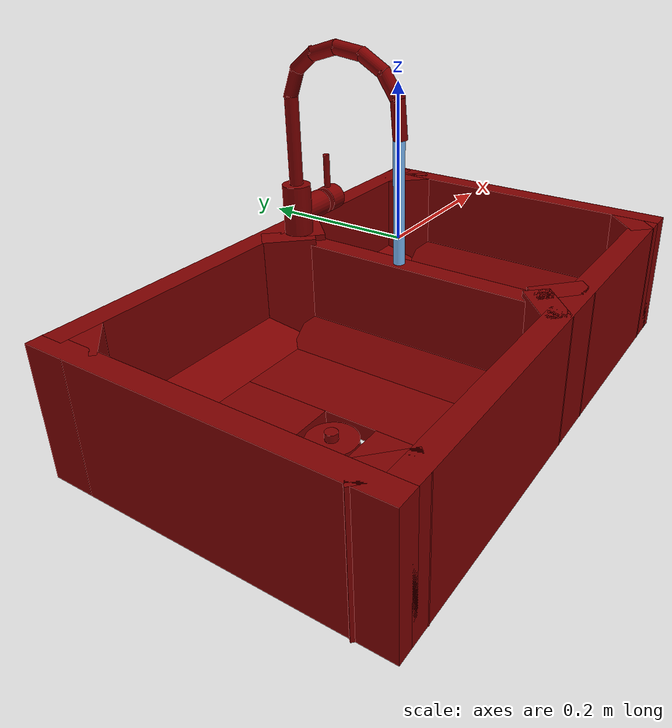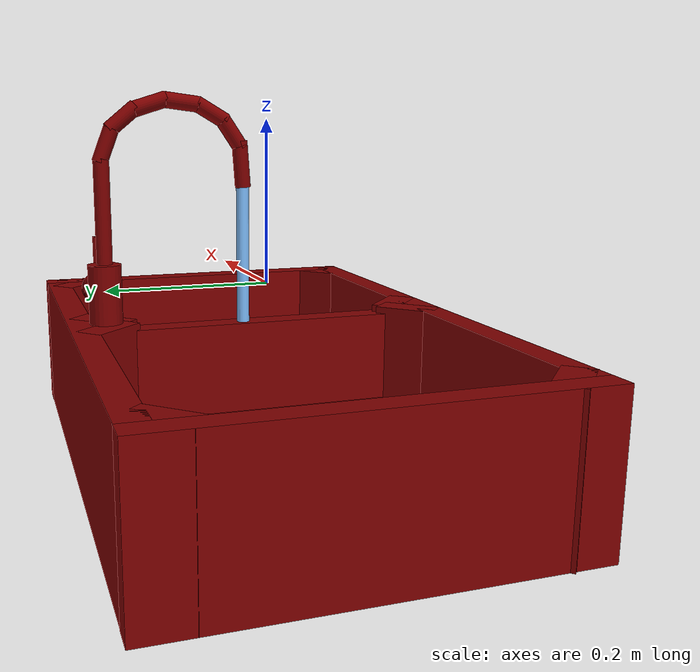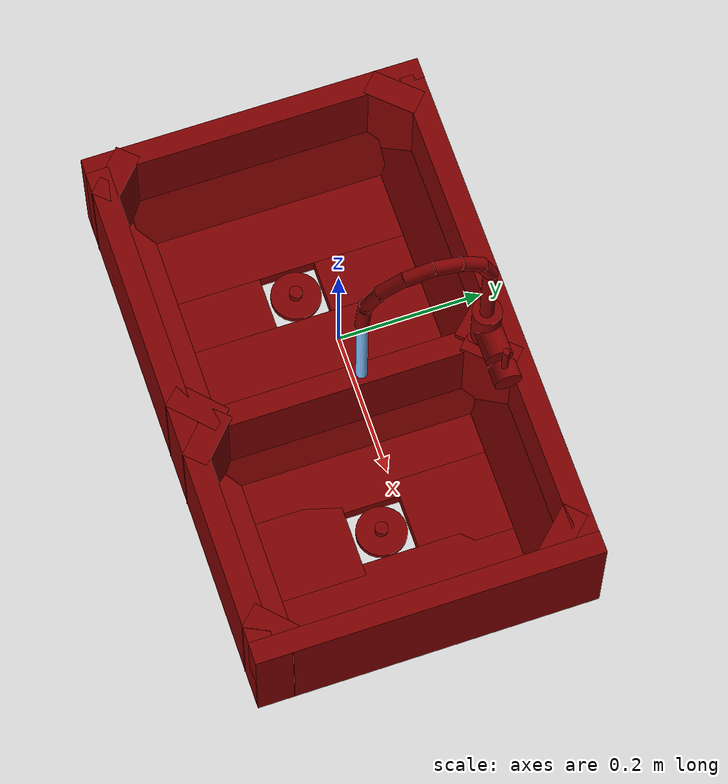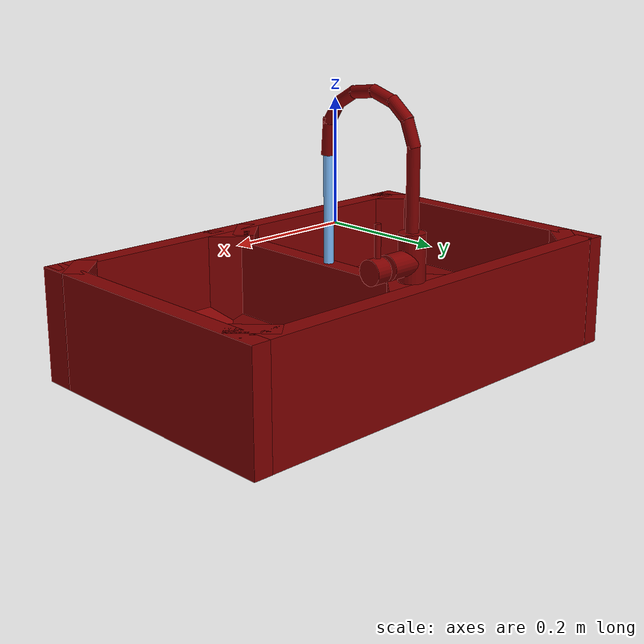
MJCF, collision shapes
<mujoco model="model">
  <compiler angle="radian"/>
  <asset>
    <mesh file="visuals/handle.obj" name="handle_vis"/>
    <mesh file="visuals/Body001.obj" name="Body001_vis"/>
    <mesh file="visuals/Funnel001.obj" name="Funnel001_vis"/>
    <mesh file="visuals/Funnel002.obj" name="Funnel002_vis"/>
    <mesh file="visuals/spout.obj" name="spout_vis"/>
    <texture file="visuals/T_BC001.png" name="Body001_material" type="2d"/>
    <material name="Body001_material" rgba="1 1 1 1.0" texture="Body001_material" shininess="0.141421377658844" specular="1"/>
    <texture file="visuals/T_BC001.png" name="handle_material" type="2d"/>
    <material name="handle_material" rgba="1 1 1 1.0" texture="handle_material" shininess="0.141421377658844" specular="2"/>
    <texture file="visuals/T_BC001.png" name="Funnel001_material" type="2d"/>
    <material name="Funnel001_material" rgba="1 1 1 1.0" texture="Funnel001_material" shininess="0.141421377658844" specular="2"/>
    <texture file="visuals/T_BC001.png" name="Funnel002_material" type="2d"/>
    <material name="Funnel002_material" rgba="1 1 1 1.0" texture="Funnel002_material" shininess="0.141421377658844" specular="2"/>
    <texture file="visuals/T_BC001.png" name="spout_material" type="2d"/>
    <material name="spout_material" rgba="1 1 1 1.0" texture="spout_material" shininess="0.141421377658844" specular="2"/>
  </asset>
  <default>
    <default class="visual">
      <geom conaffinity="0" contype="0" group="1" type="mesh"/>
    </default>
    <default class="collision">
      <geom group="0" rgba="0.5 0 0 0.5"/>
    </default>
    <default class="spawn">
      <geom group="0" rgba="1 1 1 0.5" contype="0" conaffinity="0"/>
      <site group="0" rgba="1 1 1 0.5"/>
    </default>
    <default class="region">
      <geom group="1" conaffinity="0" contype="0" rgba="0 1 0 0"/>
    </default>
  </default>
  <worldbody>
    <body>
      <body name="object">
        <geom mesh="Body001_vis" type="mesh" solimp="0.998 0.998 0.001" solref="0.001 1" density="100" friction="0.95 0.3 0.1" class="visual" material="Body001_material"/>
        <geom class="collision" type="box" pos="0.03568817675113678 -0.0003344826400279999 -0.1364026814699173" size="0.015563767403364182 0.227515310049057 0.08199891448020935" quat="1.0 0.0 0.0 0.0"/>
        <geom class="collision" type="box" pos="0.3672191798686981 0.000310288742184639 -0.13890698552131653" size="0.015563767403364182 0.2437194436788559 0.09314655512571335" quat="1.0 0.0 0.0 0.0"/>
        <geom class="collision" type="box" pos="-0.36710846424102783 0.000310288742184639 -0.13890698552131653" size="0.015563767403364182 0.2437194436788559 0.09314655512571335" quat="1.0 0.0 0.0 0.0"/>
        <geom class="collision" type="box" pos="0.008151352405548096 -0.22702988982200623 -0.13890698552131653" size="0.3691226840019226 0.01637926511466503 0.09314655512571335" quat="1.0 0.0 0.0 0.0"/>
        <geom class="collision" type="box" pos="0.008151352405548096 0.22727715969085693 -0.13890698552131653" size="0.3691226840019226 0.01637926511466503 0.09314655512571335" quat="1.0 0.0 0.0 0.0"/>
        <geom class="collision" type="box" pos="-0.2863728404045105 -0.0003344826400279999 -0.22008143365383148" size="0.08264978229999542 0.227515310049057 0.011674664914608002" quat="1.0 0.0 0.0 0.0"/>
        <geom class="collision" type="box" pos="0.0184875950217247 -0.0003344826400279999 -0.22008143365383148" size="0.1452818065881729 0.227515310049057 0.011674664914608002" quat="1.0 0.0 0.0 0.0"/>
        <geom class="collision" type="box" pos="0.29838797450065613 -0.0003344826400279999 -0.22008143365383148" size="0.05668413266539574 0.227515310049057 0.011674664914608002" quat="1.0 0.0 0.0 0.0"/>
        <geom class="collision" type="box" pos="0.19910217821598053 0.1265231966972351 -0.22008143365383148" size="0.05868058279156685 0.09398091584444046 0.011674664914608002" quat="1.0 0.0 0.0 0.0"/>
        <geom class="collision" type="box" pos="-0.1690712422132492 0.1265231966972351 -0.22008143365383148" size="0.05868058279156685 0.09398091584444046 0.011674664914608002" quat="1.0 0.0 0.0 0.0"/>
        <geom class="collision" type="box" pos="-0.1690712422132492 -0.13720722496509552 -0.22008143365383148" size="0.05868058279156685 0.089688740670681 0.011674664914608002" quat="1.0 0.0 0.0 0.0"/>
        <geom class="collision" type="box" pos="0.19910217821598053 -0.13720722496509552 -0.22008143365383148" size="0.05868058279156685 0.089688740670681 0.011674664914608002" quat="1.0 0.0 0.0 0.0"/>
        <geom class="collision" type="cylinder" pos="0.03617861866950989 0.19606594741344452 -0.015957601368427277" size="0.020531006157398224 0.043195951730012894" quat="1.0 0.0 0.0 0.0"/>
        <geom class="collision" type="cylinder" pos="0.06273851543664932 0.19606594741344452 -0.015957601368427277" size="0.019330136477947235 0.02658579871058464" quat="0.7071068286895752 -0.0 0.7071067690849304 0.0"/>
        <geom class="collision" type="box" pos="0.3402000367641449 0.1968977153301239 -0.13890698552131653" size="0.018279265612363815 0.03848198428750038 0.09314655512571335" quat="0.9288605451583862 0.0 0.0 0.3704295754432678"/>
        <geom class="collision" type="box" pos="0.34275612235069275 -0.2045062780380249 -0.13890698552131653" size="0.018279265612363815 0.03848198428750038 0.09314655512571335" quat="0.9187368750572205 0.0 -0.0 -0.3948703110218048"/>
        <geom class="collision" type="box" pos="0.05802831053733826 -0.2045062780380249 -0.13890698552131653" size="0.018279265612363815 0.03848198428750038 0.09314655512571335" quat="0.9187368750572205 0.0 0.0 0.3948703110218048"/>
        <geom class="collision" type="box" pos="0.06058439612388611 0.1968977153301239 -0.13890698552131653" size="0.018279265612363815 0.03848198428750038 0.09314655512571335" quat="0.9288605451583862 0.0 -0.0 -0.3704295754432678"/>
        <geom class="collision" type="box" pos="-0.3431363105773926 0.1968977153301239 -0.13890698552131653" size="0.018279265612363815 0.03848198428750038 0.09314655512571335" quat="0.9288605451583862 0.0 -0.0 -0.3704295754432678"/>
        <geom class="collision" type="box" pos="-0.34569239616394043 -0.2045062780380249 -0.13890698552131653" size="0.018279265612363815 0.03848198428750038 0.09314655512571335" quat="0.9187368750572205 0.0 0.0 0.3948703110218048"/>
        <geom class="collision" type="box" pos="0.014472529292106628 -0.2045062780380249 -0.13890698552131653" size="0.018279265612363815 0.03848198428750038 0.09314655512571335" quat="0.9187368750572205 0.0 -0.0 -0.3948703110218048"/>
        <geom class="collision" type="box" pos="0.011916443705558777 0.1968977153301239 -0.13890698552131653" size="0.018279265612363815 0.03848198428750038 0.09314655512571335" quat="0.9288605451583862 0.0 0.0 0.3704295754432678"/>
        <geom class="collision" type="box" pos="0.0026754289865493774 0.19597679376602173 -0.19474796950817108" size="0.3543732166290283 0.011045520193874836 0.035755012184381485" quat="0.9144361615180969 -0.4047302007675171 -0.0 0.0"/>
        <geom class="collision" type="box" pos="0.0026754289865493774 -0.19883054494857788 -0.19474796950817108" size="0.3543732166290283 0.011045520193874836 0.035755012184381485" quat="0.9144361615180969 0.4047302007675171 0.0 0.0"/>
        <geom class="collision" type="box" pos="0.04935949295759201 -0.007661152631044388 -0.1947479546070099" size="0.1818905919790268 0.011045528575778008 0.03575501963496208" quat="0.6466040015220642 0.28618746995925903 -0.28618746995925903 -0.6466040015220642"/>
        <geom class="collision" type="box" pos="-0.33312273025512695 -0.007661152631044388 -0.1947479546070099" size="0.1818905919790268 0.011045528575778008 0.03575501963496208" quat="0.6466040015220642 0.28618746995925903 -0.28618746995925903 -0.6466040015220642"/>
        <geom class="collision" type="box" pos="0.33535078167915344 -0.007661152631044388 -0.1947479546070099" size="0.1818905919790268 0.011045528575778008 0.03575501963496208" quat="0.6466040015220642 0.28618746995925903 0.28618746995925903 0.6466040015220642"/>
        <geom class="collision" type="box" pos="0.010097809135913849 -0.007661152631044388 -0.1947479546070099" size="0.1818905919790268 0.011045528575778008 0.03575501963496208" quat="0.6466040015220642 0.28618746995925903 0.28618746995925903 0.6466040015220642"/>
        <body name="handle">
          <joint axis="1.0 0.0 0.0" pos="0.10867473483085632 0.19604940712451935 -0.015824340283870697" limited="true" name="handle_joint_hinge_0" type="hinge" range="-0.7853981633974483 0.7853981633974483" damping="1" frictionloss="1" armature=".01" stiffness="0.05"/>
          <joint axis="0.0 1.0 0.0" pos="0.10867473483085632 0.19604940712451935 -0.015824340283870697" limited="true" name="handle_joint_hinge_1" type="hinge" range="0.0 0.17453292519943295" damping="1" frictionloss="1" armature=".01" stiffness="0.05"/>
          <geom mesh="handle_vis" type="mesh" solimp="0.998 0.998 0.001" solref="0.001 1" density="100" friction="0.95 0.3 0.1" class="visual" material="handle_material"/>
          <geom class="collision" type="cylinder" pos="0.11229439824819565 0.19606594741344452 -0.015957601368427277" size="0.019330138340592384 0.012952927500009537" quat="0.7071068286895752 -0.0 0.7071067690849304 0.0"/>
          <geom class="collision" type="cylinder" pos="0.10866837203502655 0.19606594741344452 0.02707352489233017" size="0.004705752711743116 0.025899672880768776" quat="1.0 0.0 0.0 0.0"/>
        </body>
        <body name="Funnel001">
          <joint axis="0.0 0.0 1.0" pos="-0.16590765118598938 -0.006767403334379196 -0.21758179366588593" limited="true" name="Funnel001_joint" range="0.0 0.1" type="slide" damping="1" frictionloss="1" armature=".01" stiffness="0.05"/>
          <geom mesh="Funnel001_vis" type="mesh" solimp="0.998 0.998 0.001" solref="0.001 1" density="100" friction="0.95 0.3 0.1" class="visual" material="Funnel001_material"/>
          <geom class="collision" type="cylinder" pos="-0.16590765118598938 -0.0067674024030566216 -0.21700519323349" size="0.035669755190610886 0.004402171354740858" quat="1.0 0.0 0.0 0.0"/>
          <geom class="collision" type="cylinder" pos="-0.16665276885032654 -0.006767403334379196 -0.20704370737075806" size="0.009161126799881458 0.0061215003952383995" quat="1.0 0.0 0.0 0.0"/>
        </body>
        <body name="Funnel002">
          <joint axis="0.0 0.0 1.0" pos="0.2018943428993225 -0.00676749087870121 -0.21758176386356354" limited="true" name="Funnel002_joint" range="0.0 0.1" type="slide" damping="1" frictionloss="1" armature=".01" stiffness="0.05"/>
          <geom mesh="Funnel002_vis" type="mesh" solimp="0.998 0.998 0.001" solref="0.001 1" density="100" friction="0.95 0.3 0.1" class="visual" material="Funnel002_material"/>
          <geom class="collision" type="cylinder" pos="0.2028825879096985 -0.0067674024030566216 -0.21700519323349" size="0.035669755190610886 0.004402171354740858" quat="1.0 0.0 0.0 0.0"/>
          <geom class="collision" type="cylinder" pos="0.20213747024536133 -0.006767403334379196 -0.20704370737075806" size="0.009161126799881458 0.0061215003952383995" quat="1.0 0.0 0.0 0.0"/>
        </body>
        <body name="spout">
          <joint axis="0.0 0.0 1.0" pos="0.03627399355173111 0.1957000494003296 0.11866484582424164" limited="true" name="spout_joint" range="-0.7853981633974483 0.7853981633974483" type="hinge" damping="1" frictionloss="1" armature=".01" stiffness="0.05"/>
          <site type="cylinder" rgba="0.5 0.75 1 1" size="0.00793509278446436 0.16602979600429535" pos="0.03495003655552864 0.020617980509996414 -0.045031335204839706" name="water"/>
          <geom mesh="spout_vis" type="mesh" solimp="0.998 0.998 0.001" solref="0.001 1" density="100" friction="0.95 0.3 0.1" class="visual" material="spout_material"/>
          <geom class="collision" type="cylinder" pos="0.03617861866950989 0.19561825692653656 0.09106597304344177" size="0.00973040983080864 0.06362255662679672" quat="1.0 0.0 0.0 0.0"/>
          <geom class="collision" type="cylinder" pos="0.03617861866950989 0.18965277075767517 0.16977249085903168" size="0.00973040983080864 0.021186772733926773" quat="0.9831604957580566 0.18274420499801636 0.0 0.0"/>
          <geom class="collision" type="cylinder" pos="0.03617861866950989 0.16832755506038666 0.2013212889432907" size="0.00973040983080864 0.021186772733926773" quat="0.9046697020530701 0.426113486289978 0.0 0.0"/>
          <geom class="collision" type="cylinder" pos="0.03617861866950989 0.13507911562919617 0.21813806891441345" size="0.00973040983080864 0.021186772733926773" quat="0.8061753511428833 0.5916767120361328 0.0 0.0"/>
          <geom class="collision" type="cylinder" pos="0.03617861866950989 0.09661020338535309 0.2210264503955841" size="0.00973040983080864 0.021186772733926773" quat="0.6601064205169678 0.7511721253395081 0.0 0.0"/>
          <geom class="collision" type="cylinder" pos="0.03617861866950989 0.059938497841358185 0.20891664922237396" size="0.00973040983080864 0.021186772733926773" quat="0.4968041479587555 0.8678627014160156 0.0 0.0"/>
          <geom class="collision" type="cylinder" pos="0.03617861866950989 0.03362216055393219 0.18337054550647736" size="0.00973040983080864 0.021186772733926773" quat="0.2905207574367523 0.9568687081336975 0.0 0.0"/>
          <geom class="collision" type="cylinder" pos="0.03617861866950989 0.021766141057014465 0.14594592154026031" size="0.00973040983080864 0.028721407055854797" quat="0.03713774308562279 0.9993101358413696 0.0 0.0"/>
        </body>
        <geom class="region" name="reg_main" type="box" pos="-7.450580596923828e-09 0.0 -0.13860158622264862" size="0.38223797082901 0.24297097325325012 0.09255319833755493"/>
        <geom class="region" name="reg_basin_left" type="box" pos="-0.16694546211510897 -0.0016727745532989502 -0.12764544785022736" size="0.16950356494635344 0.19366773962974548 0.06813423335552216"/>
        <geom class="region" name="reg_basin_right" type="box" pos="0.20173728466033936 -0.0016727745532989502 -0.12764544785022736" size="0.13472214341163635 0.19366773962974548 0.06813423335552216"/>
      </body>
    </body>
  </worldbody>
  <actuator>
    <motor name="handle_joint_hinge_0_actuator" joint="handle_joint_hinge_0" gear="10"/>
    <motor name="handle_joint_hinge_1_actuator" joint="handle_joint_hinge_1" gear="10"/>
    <motor name="Funnel001_joint_actuator" joint="Funnel001_joint" gear="10"/>
    <motor name="Funnel002_joint_actuator" joint="Funnel002_joint" gear="10"/>
    <motor name="spout_joint_actuator" joint="spout_joint" gear="10"/>
  </actuator>
</mujoco>
